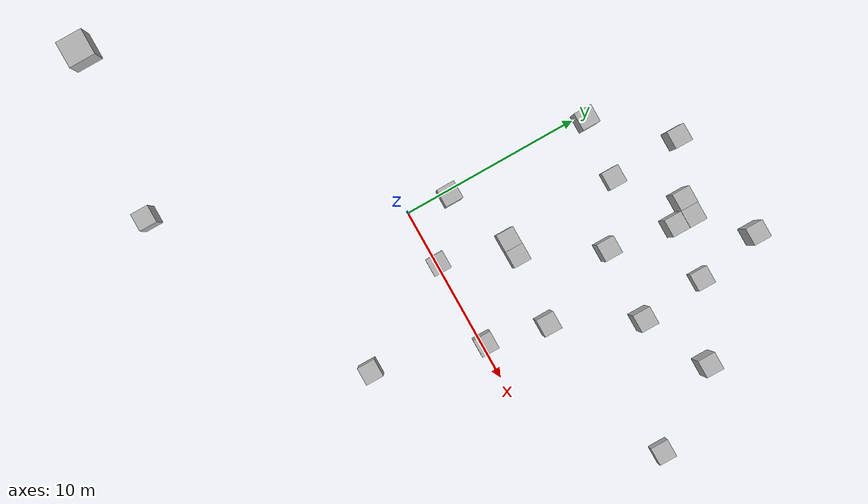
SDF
<sdf version="1.4">
 <world name="default">
  <include><uri>model://sun</uri></include>
  <model name="brick_box_1">
   <static>1</static>
   <link name="chassis">
    <pose>0 0 1 0 -0 0</pose>
    <collision name="collision"><geometry><box><size>1 1 2</size></box></geometry></collision>
    <visual name="visual">
     <geometry><mesh><uri>model://brick_box_1/meshes/simple_box.dae</uri><scale>1 1 2</scale></mesh></geometry>
     <material>
      <script>
       <uri>model://brick_box_1/materials/scripts</uri>
       <uri>model://brick_box_1/materials/textures</uri>
       <name>BrickBox/Diffuse</name>
      </script>
     </material>
    </visual>
   </link>
   <pose>10.56545 11.74803 0 0 -0 0</pose>
  </model>
  <model name="brick_box_1_0">
   <static>1</static>
   <link name="chassis">
    <pose>0 0 1.5 0 -0 0</pose>
    <collision name="collision"><geometry><box><size>1 1 3</size></box></geometry></collision>
    <visual name="visual">
     <geometry><mesh><uri>model://brick_box_1/meshes/simple_box.dae</uri><scale>1 1 3</scale></mesh></geometry>
     <material>
      <script>
       <uri>model://brick_box_1/materials/scripts</uri>
       <uri>model://brick_box_1/materials/textures</uri>
       <name>BrickBox/Diffuse</name>
      </script>
     </material>
    </visual>
   </link>
   <pose>3.09952 0.090579 0 0 -0 0</pose>
  </model>
  <model name="brick_box_1_4">
   <static>1</static>
   <link name="chassis">
    <pose>0 0 2 0 -0 0</pose>
    <collision name="collision"><geometry><box><size>1 1 4</size></box></geometry></collision>
    <visual name="visual">
     <geometry><mesh><uri>model://brick_box_1/meshes/simple_box.dae</uri><scale>1 1 4</scale></mesh></geometry>
     <material>
      <script>
       <uri>model://brick_box_1/materials/scripts</uri>
       <uri>model://brick_box_1/materials/textures</uri>
       <name>BrickBox/Diffuse</name>
      </script>
     </material>
    </visual>
   </link>
   <pose>10.86163 7.99247 0 0 -0 0</pose>
  </model>
  <model name="brick_box_2_4">
   <static>1</static>
   <link name="chassis">
    <pose>0 0 2 0 -0 0</pose>
    <collision name="collision"><geometry><box><size>1 1 4</size></box></geometry></collision>
    <visual name="visual">
     <geometry><mesh><uri>model://brick_box_2/meshes/simple_box.dae</uri><scale>1 1 4</scale></mesh></geometry>
     <material>
      <script>
       <uri>model://brick_box_2/materials/scripts</uri>
       <uri>model://brick_box_2/materials/textures</uri>
       <name>BrickBox/Flower</name>
      </script>
     </material>
    </visual>
   </link>
   <pose>6.7533 8.15373 0 0 -0 0</pose>
  </model>
  <model name="brick_box_1_6">
   <static>1</static>
   <link name="chassis">
    <pose>6.25217 -5.72967 2 0 -0 0</pose>
    <collision name="collision"><geometry><box><size>1 1 4</size></box></geometry></collision>
    <visual name="visual">
     <geometry><mesh><uri>model://brick_box_1/meshes/simple_box.dae</uri><scale>1 1 4</scale></mesh></geometry>
     <material>
      <script>
       <uri>model://brick_box_1/materials/scripts</uri>
       <uri>model://brick_box_1/materials/textures</uri>
       <name>BrickBox/Diffuse</name>
      </script>
     </material>
    </visual>
   </link>
  </model>
  <model name="brick_box_1_7">
   <static>1</static>
   <link name="chassis">
    <pose>-15.78765 -10.78958 2 0 -0 0</pose>
    <collision name="collision"><geometry><box><size>1.5 1.5 4</size></box></geometry></collision>
    <visual name="visual">
     <geometry><mesh><uri>model://brick_box_1/meshes/simple_box.dae</uri><scale>1.5 1.5 4</scale></mesh></geometry>
     <material>
      <script>
       <uri>model://brick_box_1/materials/scripts</uri>
       <uri>model://brick_box_1/materials/textures</uri>
       <name>BrickBox/Diffuse</name>
      </script>
     </material>
    </visual>
   </link>
  </model>
  <model name="brick_box_2_5">
   <static>1</static>
   <link name="chassis">
    <pose>3.68471 10.30592 1 0 -0 0</pose>
    <collision name="collision"><geometry><box><size>1 1 2</size></box></geometry></collision>
    <visual name="visual">
     <geometry><mesh><uri>model://brick_box_2/meshes/simple_box.dae</uri><scale>1 1 2</scale></mesh></geometry>
     <material>
      <script>
       <uri>model://brick_box_2/materials/scripts</uri>
       <uri>model://brick_box_2/materials/textures</uri>
       <name>BrickBox/Flower</name>
      </script>
     </material>
    </visual>
   </link>
  </model>
  <model name="brick_box_3_2">
   <static>1</static>
   <link name="chassis">
    <pose>0.263583 2.32809 3 0 -0 0</pose>
    <collision name="collision"><geometry><box><size>1 1 6</size></box></geometry></collision>
    <visual name="visual">
     <geometry><mesh><uri>model://brick_box_3/meshes/simple_box.dae</uri><scale>1 1 6</scale></mesh></geometry>
     <material>
      <script>
       <uri>model://brick_box_3/materials/scripts</uri>
       <uri>model://brick_box_3/materials/textures</uri>
       <name>BrickBox/Sea</name>
      </script>
     </material>
    </visual>
   </link>
  </model>
  <model name="brick_box_2_7">
   <static>1</static>
   <link name="chassis">
    <pose>-6.414712 -12.02008 2 0 -0 0</pose>
    <collision name="collision"><geometry><box><size>1 1 4</size></box></geometry></collision>
    <visual name="visual">
     <geometry><mesh><uri>model://brick_box_2/meshes/simple_box.dae</uri><scale>1 1 4</scale></mesh></geometry>
     <material>
      <script>
       <uri>model://brick_box_2/materials/scripts</uri>
       <uri>model://brick_box_2/materials/textures</uri>
       <name>BrickBox/Flower</name>
      </script>
     </material>
    </visual>
   </link>
  </model>
  <model name="brick_box_1_9">
   <static>1</static>
   <link name="chassis">
    <pose>0 0 0.5 0 -0 0</pose>
    <collision name="collision"><geometry><box><size>1 1 4</size></box></geometry></collision>
    <visual name="visual">
     <geometry><mesh><uri>model://brick_box_1/meshes/simple_box.dae</uri><scale>1 1 4</scale></mesh></geometry>
     <material>
      <script>
       <uri>model://brick_box_1/materials/scripts</uri>
       <uri>model://brick_box_1/materials/textures</uri>
       <name>BrickBox/Diffuse</name>
      </script>
     </material>
    </visual>
   </link>
   <pose>7.42118 12.9415 0 0 -0 0</pose>
  </model>
  <model name="brick_box_2_15">
   <static>1</static>
   <link name="chassis">
    <pose>0 0 0.5 0 -0 0</pose>
    <collision name="collision"><geometry><box><size>1 1 4</size></box></geometry></collision>
    <visual name="visual">
     <geometry><mesh><uri>model://brick_box_2/meshes/simple_box.dae</uri><scale>1 1 4</scale></mesh></geometry>
     <material>
      <script>
       <uri>model://brick_box_2/materials/scripts</uri>
       <uri>model://brick_box_2/materials/textures</uri>
       <name>BrickBox/Flower</name>
      </script>
     </material>
    </visual>
   </link>
   <pose>3.80825 3.91955 0 0 -0 0</pose>
  </model>
  <model name="brick_box_2_8">
   <static>1</static>
   <link name="chassis">
    <pose>0 0 1 0 -0 0</pose>
    <collision name="collision"><geometry><box><size>1 1 2</size></box></geometry></collision>
    <visual name="visual">
     <geometry><mesh><uri>model://brick_box_2/meshes/simple_box.dae</uri><scale>1 1 2</scale></mesh></geometry>
     <material>
      <script>
       <uri>model://brick_box_2/materials/scripts</uri>
       <uri>model://brick_box_2/materials/textures</uri>
       <name>BrickBox/Flower</name>
      </script>
     </material>
    </visual>
   </link>
   <pose>17.48865 5.51244 0 0 -0 0</pose>
  </model>
  <model name="brick_box_3_7">
   <static>1</static>
   <link name="chassis">
    <pose>8.61857 3.52495 2 0 -0 0</pose>
    <collision name="collision"><geometry><box><size>1 1 4</size></box></geometry></collision>
    <visual name="visual">
     <geometry><mesh><uri>model://brick_box_3/meshes/simple_box.dae</uri><scale>1 1 4</scale></mesh></geometry>
     <material>
      <script>
       <uri>model://brick_box_3/materials/scripts</uri>
       <uri>model://brick_box_3/materials/textures</uri>
       <name>BrickBox/Sea</name>
      </script>
     </material>
    </visual>
   </link>
  </model>
  <model name="brick_box_2_13">
   <static>1</static>
   <link name="chassis">
    <pose>0 0 2 0 -0 0</pose>
    <collision name="collision"><geometry><box><size>1 1 4</size></box></geometry></collision>
    <visual name="visual">
     <geometry><mesh><uri>model://brick_box_2/meshes/simple_box.dae</uri><scale>1 1 4</scale></mesh></geometry>
     <material>
      <script>
       <uri>model://brick_box_2/materials/scripts</uri>
       <uri>model://brick_box_2/materials/textures</uri>
       <name>BrickBox/Flower</name>
      </script>
     </material>
    </visual>
   </link>
   <pose>7.93039 0.191898 0 0 -0 0</pose>
  </model>
  <model name="brick_box_1_12">
   <static>1</static>
   <link name="chassis">
    <pose>0 0 2 0 -0 0</pose>
    <collision name="collision"><geometry><box><size>1 1 4</size></box></geometry></collision>
    <visual name="visual">
     <geometry><mesh><uri>model://brick_box_1/meshes/simple_box.dae</uri><scale>1 1 4</scale></mesh></geometry>
     <material>
      <script>
       <uri>model://brick_box_1/materials/scripts</uri>
       <uri>model://brick_box_1/materials/textures</uri>
       <name>BrickBox/Diffuse</name>
      </script>
     </material>
    </visual>
   </link>
   <pose>0.284593 10.46753 0 0 -0 0</pose>
  </model>
  <model name="brick_box_3_12">
   <static>1</static>
   <link name="chassis">
    <pose>0 0 0.5 0 -0 0</pose>
    <collision name="collision"><geometry><box><size>1 1 4</size></box></geometry></collision>
    <visual name="visual">
     <geometry><mesh><uri>model://brick_box_3/meshes/simple_box.dae</uri><scale>1 1 4</scale></mesh></geometry>
     <material>
      <script>
       <uri>model://brick_box_3/materials/scripts</uri>
       <uri>model://brick_box_3/materials/textures</uri>
       <name>BrickBox/Sea</name>
      </script>
     </material>
    </visual>
   </link>
   <pose>4.76824 3.92713 0 0 -0 0</pose>
  </model>
  <model name="brick_box_2_20">
   <static>1</static>
   <link name="chassis">
    <pose>0 0 0.5 0 -0 0</pose>
    <collision name="collision"><geometry><box><size>1 1 4</size></box></geometry></collision>
    <visual name="visual">
     <geometry><mesh><uri>model://brick_box_2/meshes/simple_box.dae</uri><scale>1 1 4</scale></mesh></geometry>
     <material>
      <script>
       <uri>model://brick_box_2/materials/scripts</uri>
       <uri>model://brick_box_2/materials/textures</uri>
       <name>BrickBox/Flower</name>
      </script>
     </material>
    </visual>
   </link>
   <pose>7.42083 11.9361 0 0 -0 0</pose>
  </model>
  <model name="brick_box_3_14">
   <static>1</static>
   <link name="chassis">
    <pose>0 0 0.5 0 -0 0</pose>
    <collision name="collision"><geometry><box><size>1 1 4</size></box></geometry></collision>
    <visual name="visual">
     <geometry><mesh><uri>model://brick_box_3/meshes/simple_box.dae</uri><scale>1 1 4</scale></mesh></geometry>
     <material>
      <script>
       <uri>model://brick_box_3/materials/scripts</uri>
       <uri>model://brick_box_3/materials/textures</uri>
       <name>BrickBox/Sea</name>
      </script>
     </material>
    </visual>
   </link>
   <pose>6.45544 12.9621 0 0 -0 0</pose>
  </model>
  <model name="brick_box_3_17">
   <static>1</static>
   <link name="chassis">
    <pose>0 0 0.5 0 -0 0</pose>
    <collision name="collision"><geometry><box><size>1 1 4</size></box></geometry></collision>
    <visual name="visual">
     <geometry><mesh><uri>model://brick_box_3/meshes/simple_box.dae</uri><scale>1 1 4</scale></mesh></geometry>
     <material>
      <script>
       <uri>model://brick_box_3/materials/scripts</uri>
       <uri>model://brick_box_3/materials/textures</uri>
       <name>BrickBox/Sea</name>
      </script>
     </material>
    </visual>
   </link>
   <pose>3.47314 14.3082 0 0 -0 0</pose>
  </model>
  <model name="brick_box_2_22">
   <static>1</static>
   <link name="chassis">
    <pose>0 0 0.5 0 -0 0</pose>
    <collision name="collision"><geometry><box><size>1 1 4</size></box></geometry></collision>
    <visual name="visual">
     <geometry><mesh><uri>model://brick_box_2/meshes/simple_box.dae</uri><scale>1 1 4</scale></mesh></geometry>
     <material>
      <script>
       <uri>model://brick_box_2/materials/scripts</uri>
       <uri>model://brick_box_2/materials/textures</uri>
       <name>BrickBox/Flower</name>
      </script>
     </material>
    </visual>
   </link>
   <pose>14.6741 9.86596 0 0 -0 0</pose>
  </model>
  <model name="brick_box_2_18">
   <static>1</static>
   <link name="chassis">
    <pose>0 0 0.5 0 -0 0</pose>
    <collision name="collision"><geometry><box><size>1 1 4</size></box></geometry></collision>
    <visual name="visual">
     <geometry><mesh><uri>model://brick_box_2/meshes/simple_box.dae</uri><scale>1 1 4</scale></mesh></geometry>
     <material>
      <script>
       <uri>model://brick_box_2/materials/scripts</uri>
       <uri>model://brick_box_2/materials/textures</uri>
       <name>BrickBox/Flower</name>
      </script>
     </material>
    </visual>
   </link>
   <pose>9.87253 15.4132 0 0 -0 0</pose>
  </model>
 </world>
</sdf>
